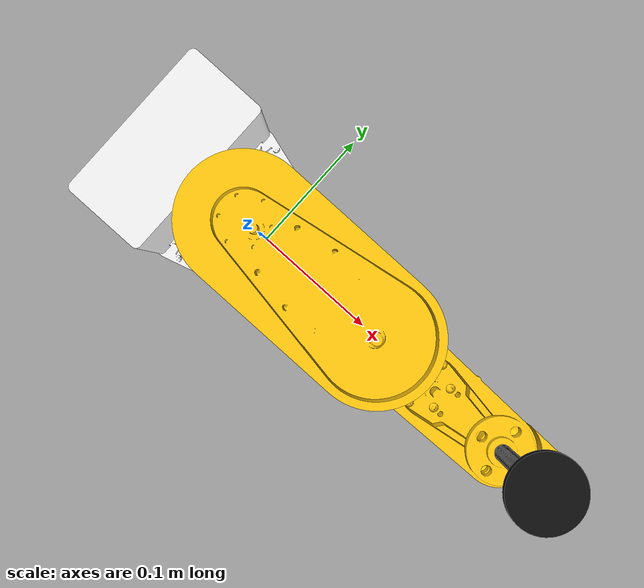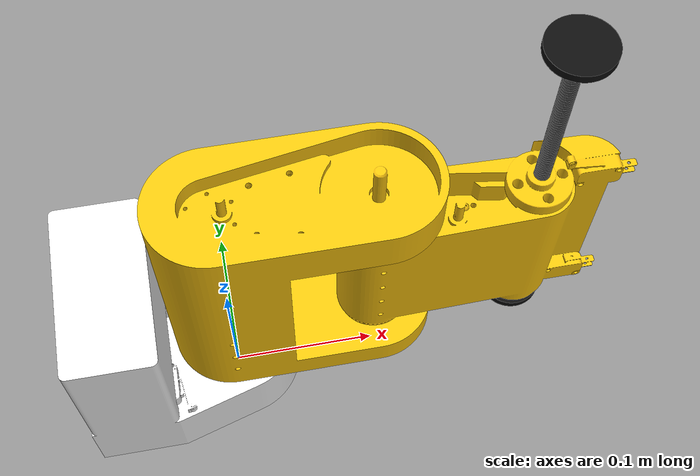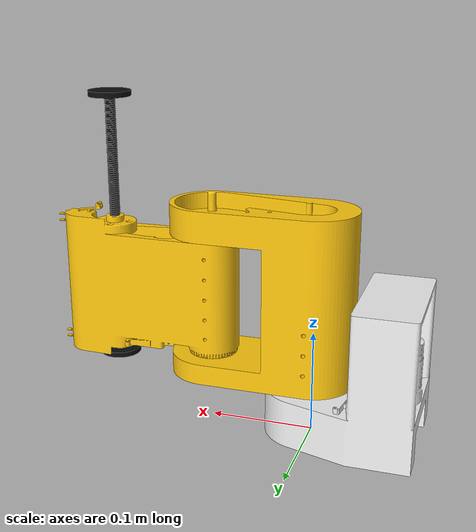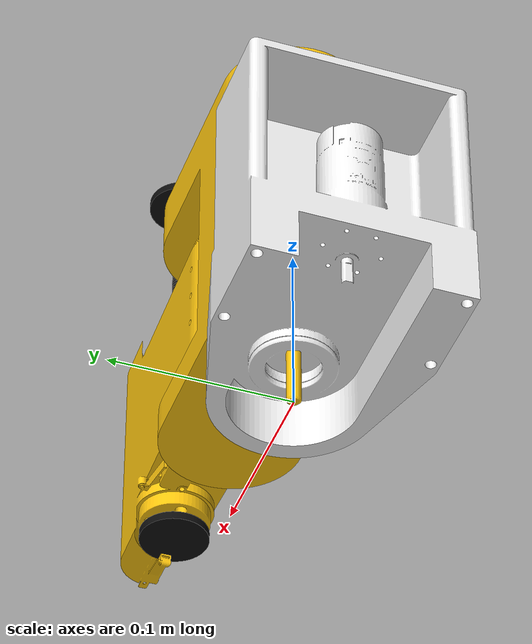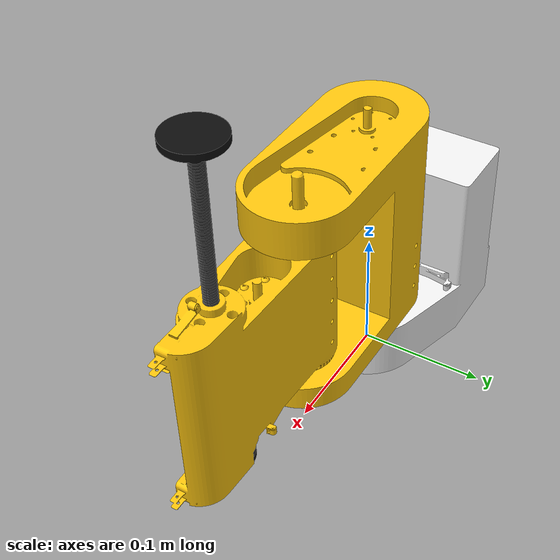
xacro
<?xml version="1.0"?>
<!--
  Estacion 3 - Clasificacion y empaque
  Configuracion RRP.

  Responsable: Juan David Guerra Cabrera

  Todos los frames llevan el prefijo de la estacion, segun ADR-005.
-->
<robot xmlns:xacro="http://www.ros.org/wiki/xacro" name="station3">

  <xacro:arg name="prefijo" default="station3/"/>
  <xacro:property name="p" value="$(arg prefijo)"/>

  <xacro:arg name="control" default="true"/>
  <xacro:arg name="controladores"
             default="$(find station3_description)/config/station3_controllers.yaml"/>

  <xacro:include filename="$(find station3_description)/urdf/parametros.xacro"/>
  <xacro:include filename="$(find station3_description)/urdf/inercias.xacro"/>
  <xacro:include filename="$(find station3_description)/urdf/station3.gazebo.xacro"/>
  <xacro:include filename="$(find station3_description)/urdf/station3.ros2_control.xacro"/>

  <material name="silver">
    <color rgba="0.700 0.700 0.700 1.000"/>
  </material>

  <material name="blanco">
    <color rgba="0.950 0.950 0.950 1.000"/>
  </material>
  <material name="amarillo_maquinaria">
    <color rgba="1.000 0.780 0.050 1.000"/>
  </material>
  <material name="negro">
    <color rgba="0.050 0.050 0.050 1.000"/>
  </material>

  <link name="${p}base_link">
    <inertial>
      <xacro:inercia_base/>
    </inertial>
    <visual>
      <origin xyz="0 0 0" rpy="0 0 -1.57079632679"/>
      <geometry>
        <mesh filename="package://station3_description/meshes/base_link.stl" scale="0.001 0.001 0.001"/>
      </geometry>
      <material name="blanco"/>
    </visual>
    <collision>
      <origin xyz="0 0 0" rpy="0 0 -1.57079632679"/>
      <geometry>
        <mesh filename="package://station3_description/meshes/base_link.stl" scale="0.001 0.001 0.001"/>
      </geometry>
    </collision>
  </link>

  <link name="${p}Link1_1">
    <inertial>
      <xacro:inercia_link1/>
    </inertial>
    <visual>
      <origin xyz="-0.0 0.0 -0.0535" rpy="0 0 -1.57079632679"/>
      <geometry>
        <mesh filename="package://station3_description/meshes/Link1_1.stl" scale="0.001 0.001 0.001"/>
      </geometry>
      <material name="amarillo_maquinaria"/>
    </visual>
    <collision>
      <origin xyz="-0.0 0.0 -0.0535" rpy="0 0 -1.57079632679"/>
      <geometry>
        <mesh filename="package://station3_description/meshes/Link1_1.stl" scale="0.001 0.001 0.001"/>
      </geometry>
    </collision>
  </link>

  <link name="${p}Link2_1">
    <inertial>
      <xacro:inercia_link2/>
    </inertial>
    <visual>
      <origin xyz="-0.1 0.0 -0.0795" rpy="0 0 -1.57079632679"/>
      <geometry>
        <mesh filename="package://station3_description/meshes/Link2_1.stl" scale="0.001 0.001 0.001"/>
      </geometry>
      <material name="amarillo_maquinaria"/>
    </visual>
    <collision>
      <origin xyz="-0.1 0.0 -0.0795" rpy="0 0 -1.57079632679"/>
      <geometry>
        <mesh filename="package://station3_description/meshes/Link2_1.stl" scale="0.001 0.001 0.001"/>
      </geometry>
    </collision>
  </link>

  <link name="${p}Prismatico_1">
    <inertial>
      <xacro:inercia_prismatico/>
    </inertial>
    <visual>
      <origin xyz="-0.0 -0.2 -0.061625" rpy="0 0 0"/>
      <geometry>
        <mesh filename="package://station3_description/meshes/Prismatico_1.stl" scale="0.001 0.001 0.001"/>
      </geometry>
      <material name="negro"/>
    </visual>
    <collision>
      <origin xyz="-0.0 -0.2 -0.061625" rpy="0 0 0"/>
      <geometry>
        <mesh filename="package://station3_description/meshes/Prismatico_1.stl" scale="0.001 0.001 0.001"/>
      </geometry>
    </collision>
  </link>

  <link name="${p}world"/>

  <xacro:arg name="ventosa_sin_pieza" default="false"/>
  <xacro:if value="$(arg ventosa_sin_pieza)">
    <xacro:macro name="sin_choque_pieza" params="eslabon">
      <gazebo reference="${eslabon}">
        <collision>
          <surface><contact><collide_bitmask>0x02</collide_bitmask></contact></surface>
        </collision>
      </gazebo>
    </xacro:macro>
    <xacro:sin_choque_pieza eslabon="${p}Prismatico_1"/>
    <xacro:sin_choque_pieza eslabon="${p}Link2_1"/>
  </xacro:if>

  <!-- En la linea, Gazebo solo deja fijo al suelo un link llamado "world".
       Con solo ${p}world la base queda suelta y un golpe la gira. -->
  <xacro:arg name="anclar_mundo" default="false"/>
  <xacro:arg name="base_x" default="0.0"/>
  <xacro:arg name="base_y" default="0.0"/>
  <xacro:arg name="base_yaw" default="0.0"/>
  <xacro:if value="$(arg anclar_mundo)">
    <link name="world"/>
    <joint name="${p}anclaje" type="fixed">
      <parent link="world"/>
      <child link="${p}world"/>
      <origin xyz="$(arg base_x) $(arg base_y) 0" rpy="0 0 $(arg base_yaw)"/>
    </joint>
  </xacro:if>

  <joint name="${p}world_to_base" type="fixed">
    <parent link="${p}world"/>
    <child link="${p}base_link"/>
    <origin xyz="0 0 0" rpy="0 0 0"/>
  </joint>

  <joint name="${p}joint1_rev" type="revolute">
    <origin xyz="0.0 0.0 0.0535" rpy="0 0 0"/>
    <parent link="${p}base_link"/>
    <child link="${p}Link1_1"/>
    <axis xyz="0.0 -0.0 1.0"/>
    <limit upper="1.570796" lower="-1.570796" effort="4.9" velocity="4.19"/>
  </joint>

  <joint name="${p}joint2_rev" type="revolute">
    <origin xyz="0.1 0.0 0.026" rpy="0 0 0"/>
    <parent link="${p}Link1_1"/>
    <child link="${p}Link2_1"/>
    <axis xyz="0.0 -0.0 1.0"/>
    <limit upper="2.216568" lower="-2.216568" effort="4.9" velocity="4.19"/>
  </joint>

  <joint name="${p}joint3_prism" type="prismatic">
    <origin xyz="0.1 0.0 -0.017875" rpy="0 0 0"/>
    <parent link="${p}Link2_1"/>
    <child link="${p}Prismatico_1"/>
    <axis xyz="0.0 -0.0 1.0"/>
    <limit upper="0.0" lower="-0.0616" effort="100" velocity="100"/>
  </joint>

  <xacro:arg name="acople" default="true"/>
  <xacro:arg name="pieza" default="pieza"/>
  <xacro:if value="$(arg acople)">
    <gazebo>
      <plugin filename="gz-sim-detachable-joint-system"
              name="gz::sim::systems::DetachableJoint">
        <parent_link>${p}Prismatico_1</parent_link>
        <child_model>$(arg pieza)</child_model>
        <child_link>cuerpo</child_link>
        <attach_topic>/station3/pieza/attach</attach_topic>
        <detach_topic>/station3/pieza/detach</detach_topic>
        <suppress_child_warning>true</suppress_child_warning>
      </plugin>
    </gazebo>
  </xacro:if>

</robot>

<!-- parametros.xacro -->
<!--
  Estacion 3 - Clasificacion y empaque
  Configuracion RRP.

  Responsable: Juan David Guerra Cabrera
-->
<robot xmlns:xacro="http://www.ros.org/wiki/xacro">

  <xacro:property name="masa_base" value="0.7156748872735266"/>
  <xacro:property name="masa_link1" value="1.22604349965649"/>
  <xacro:property name="masa_link2" value="0.7194099502410848"/>
  <xacro:property name="masa_prismatico" value="0.028744"/>

</robot>

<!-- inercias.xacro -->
<robot xmlns:xacro="http://www.ros.org/wiki/xacro">

  <xacro:macro name="inercia_base">
    <origin xyz="-0.05017562970559864 -2.2518955897589762e-06 0.055877558881103656" rpy="0 0 0"/>
    <mass value="${masa_base}"/>
    <inertia ixx="0.002174" iyy="0.002132" izz="0.002026" ixy="-3.4761e-08" iyz="5.9243e-08" ixz="0.0003463"/>
  </xacro:macro>

  <xacro:macro name="inercia_link1">
    <origin xyz="0.024082412399071485 8.067348825688214e-07 0.07855915155215717" rpy="0 0 0"/>
    <mass value="${masa_link1}"/>
    <inertia ixx="0.004221" iyy="0.005843" izz="0.002838" ixy="1.1139e-08" iyz="-1.5805e-08" ixz="0.0001219"/>
  </xacro:macro>

  <xacro:macro name="inercia_link2">
    <origin xyz="0.05593671183346427 0.0013140724584443932 0.04972965995684987" rpy="0 0 0"/>
    <mass value="${masa_link2}"/>
    <inertia ixx="0.0009308" iyy="0.002416" izz="0.001752" ixy="-6.57358e-05" iyz="1.459649e-06" ixz="2.0512e-05"/>
  </xacro:macro>

  <xacro:macro name="inercia_prismatico">
    <origin xyz="7e-06 9e-06 0.125516" rpy="0 0 0"/>
    <mass value="${masa_prismatico}"/>
    <inertia ixx="0.000294" iyy="0.000294" izz="2.688347e-06" ixy="1.21e-10" iyz="4.7e-11" ixz="7.91e-10"/>
  </xacro:macro>

</robot>
